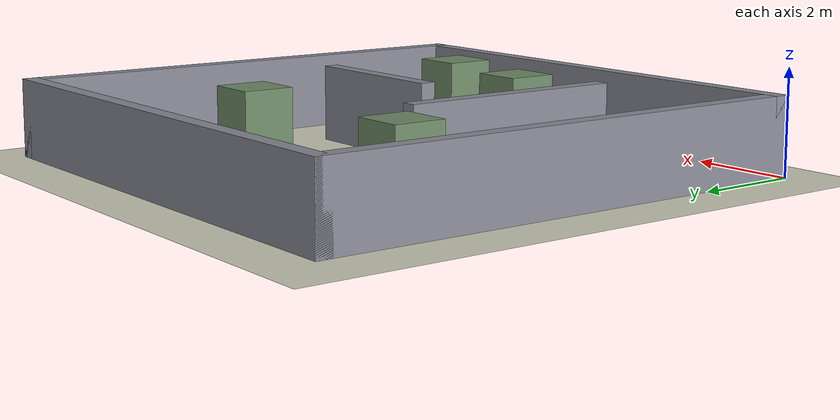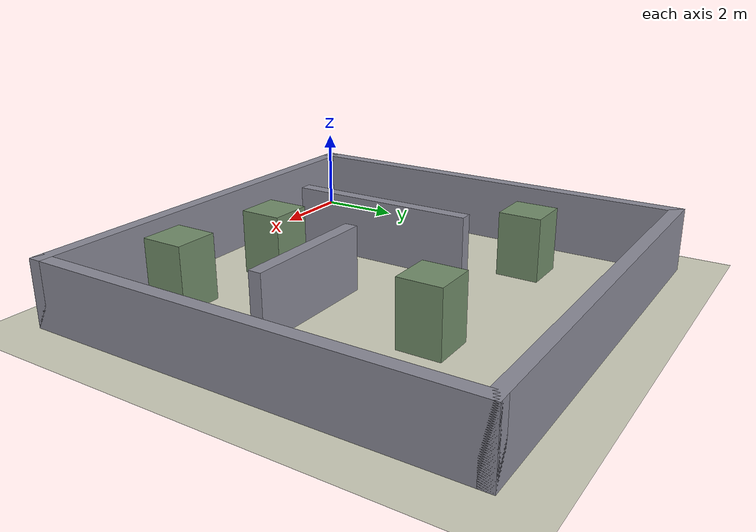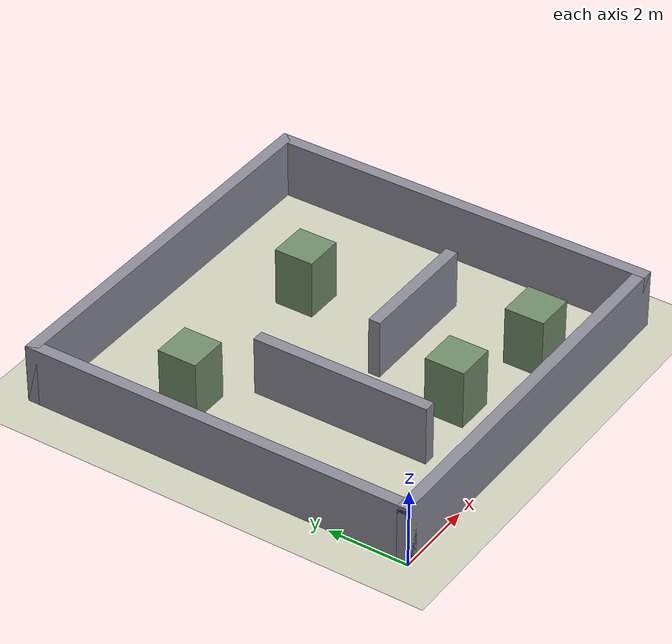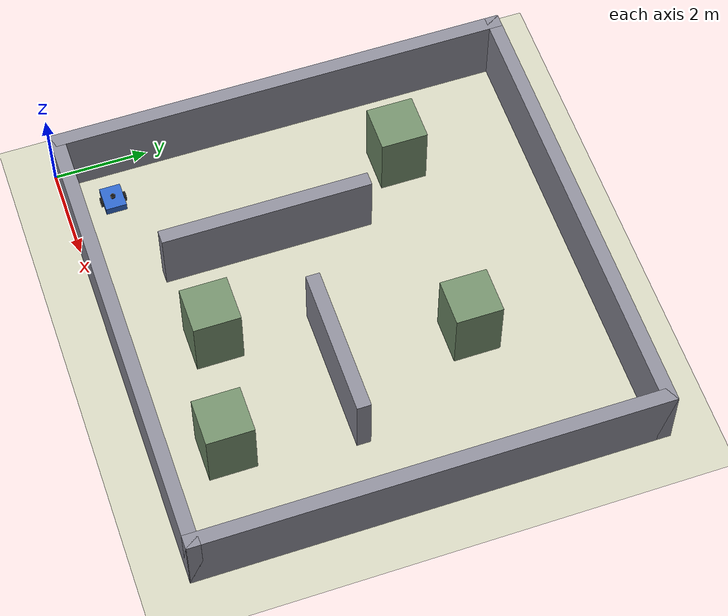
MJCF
<mujoco model="amr_warehouse">

  <compiler angle="radian" autolimits="true"/>
  <option timestep="0.004" gravity="0 0 -9.81" integrator="RK4"/>

  <visual>
    <headlight diffuse="0.85 0.85 0.85" ambient="0.3 0.3 0.3" specular="0.1 0.1 0.1"/>
    <rgba haze="0.15 0.22 0.28 1"/>
  </visual>

  <asset>
    <texture name="skybox" type="skybox" builtin="gradient"
             rgb1="0.18 0.26 0.36" rgb2="0.90 0.94 1.0" width="512" height="3072"/>
    <material name="floor_mat"   rgba="0.82 0.82 0.74 1" shininess="0.05"/>
    <material name="wall_mat"    rgba="0.55 0.55 0.60 1"/>
    <material name="box_mat"     rgba="0.45 0.56 0.42 1"/>
    <material name="chassis_mat" rgba="0.18 0.40 0.78 1"/>
    <material name="wheel_mat"   rgba="0.10 0.10 0.10 1"/>
    <material name="caster_mat"  rgba="0.55 0.55 0.55 1"/>
    <material name="lidar_mat"   rgba="0.05 0.05 0.05 1"/>
  </asset>

  <default>
    <joint damping="0.3" armature="0.01"/>
    <!-- Obstacle walls -->
    <default class="wall">
      <geom type="box" group="0" contype="1" conaffinity="1"
            material="wall_mat" friction="0.8 0.02 0.01"/>
    </default>
    <!-- Robot drive wheels -->
    <default class="wheel">
      <geom type="cylinder" group="1" contype="1" conaffinity="1"
            material="wheel_mat" friction="1.2 0.015 0.005" density="500"/>
    </default>
  </default>

  <!-- ═══════════════════════ WORLD ═══════════════════════ -->
  <worldbody>
    <light name="sun" pos="5 5 8" dir="-0.2 0.2 -1" directional="true"
           diffuse="0.9 0.9 0.9" specular="0.2 0.2 0.2" castshadow="true"/>

    <!-- Floor  (10 m × 10 m, centred at 5, 5) -->
    <geom name="floor" type="plane" pos="5 5 0" size="6 6 0.05"
          material="floor_mat" group="0" contype="1" conaffinity="1"
          friction="0.8 0.02 0.01"/>

    <!-- ── Boundary walls ────────────────────────────────────
         Each box: pos = centre, size = half-extents.
         Wall height = 1.5 m → half-height = 0.75 m           -->

    <!-- South (y=0..0.3) -->
    <geom name="wall_S" class="wall" pos="5.0 0.15 0.75" size="5.0 0.15 0.75"/>
    <!-- North (y=9.7..10.0) -->
    <geom name="wall_N" class="wall" pos="5.0 9.85 0.75" size="5.0 0.15 0.75"/>
    <!-- West  (x=0..0.3) -->
    <geom name="wall_W" class="wall" pos="0.15 5.0 0.75" size="0.15 5.0 0.75"/>
    <!-- East  (x=9.7..10.0) -->
    <geom name="wall_E" class="wall" pos="9.85 5.0 0.75" size="0.15 5.0 0.75"/>

    <!-- Interior wall A  (x=3.0..3.3, y=1.5..6.0) -->
    <geom name="wall_A" class="wall" pos="3.15 3.75 0.75" size="0.15 2.25 0.75"/>
    <!-- Interior wall B  (x=5.0..8.2, y=4.0..4.3) -->
    <geom name="wall_B" class="wall" pos="6.60 4.15 0.75" size="1.60 0.15 0.75"/>

    <!-- Box 1  (x=1.5..2.5, y=6.5..7.5) -->
    <geom name="box_1" type="box" pos="2.0 7.0 0.75" size="0.5 0.5 0.75"
          group="0" contype="1" conaffinity="1" material="box_mat"/>
    <!-- Box 2  (x=7.0..8.0, y=1.0..2.0) -->
    <geom name="box_2" type="box" pos="7.5 1.5 0.75" size="0.5 0.5 0.75"
          group="0" contype="1" conaffinity="1" material="box_mat"/>
    <!-- Box 3  (x=6.0..7.0, y=6.5..7.5) -->
    <geom name="box_3" type="box" pos="6.5 7.0 0.75" size="0.5 0.5 0.75"
          group="0" contype="1" conaffinity="1" material="box_mat"/>
    <!-- Box 4  (x=4.5..5.5, y=1.5..2.5) -->
    <geom name="box_4" type="box" pos="5.0 2.0 0.75" size="0.5 0.5 0.75"
          group="0" contype="1" conaffinity="1" material="box_mat"/>

    <body name="amr_base" pos="1.0 1.0 0.10">
      <freejoint name="root"/>

      <!-- Chassis  0.55 × 0.45 × 0.18 m -->
      <geom name="chassis" type="box" size="0.275 0.225 0.09"
            group="1" contype="1" conaffinity="1"
            material="chassis_mat" mass="12"/>

      <!-- IMU / base reference site -->
      <site name="imu_site" pos="0 0 0" size="0.015" rgba="1 1 0 0.5"/>

      <!-- LiDAR mount site (rays cast from here) -->
      <site name="lidar_site" pos="0 0 0.115" size="0.01" rgba="1 0 0 0.8"/>

      <!-- LiDAR visual body (non-collidable, excluded from rays via group 2) -->
      <geom name="lidar_vis" type="cylinder" size="0.05 0.025" pos="0 0 0.115"
            group="2" contype="0" conaffinity="0" material="lidar_mat" mass="0.15"/>

      <!-- ── Left drive wheel ──────────────────────────── -->
      <body name="left_wheel" pos="0 0.25 0">
        <joint name="left_wheel_joint" type="hinge" axis="0 1 0"
               limited="false" damping="0.5" armature="0.02"/>
        <!-- cylinder axis along Y via euler 90° around X -->
        <geom name="left_wheel_geom" class="wheel"
              size="0.10 0.025" euler="1.5708 0 0" mass="0.8"/>
      </body>

      <!-- ── Right drive wheel ─────────────────────────── -->
      <body name="right_wheel" pos="0 -0.25 0">
        <joint name="right_wheel_joint" type="hinge" axis="0 1 0"
               limited="false" damping="0.5" armature="0.02"/>
        <geom name="right_wheel_geom" class="wheel"
              size="0.10 0.025" euler="1.5708 0 0" mass="0.8"/>
      </body>

      <!-- ── Rear caster (passive sphere) ─────────────── -->
      <body name="caster" pos="-0.22 0 -0.06">
        <joint name="caster_ball" type="ball" damping="0.05" limited="false"/>
        <geom name="caster_geom" type="sphere" size="0.04"
              group="1" contype="1" conaffinity="1"
              material="caster_mat" mass="0.3"
              friction="0.001 0.001 0.001"/>
      </body>

    </body><!-- /amr_base -->

  </worldbody>

  <!-- ═══════════════════ ACTUATORS ═══════════════════════
       Velocity-controlled wheels: ctrl → target rad/s.
       Wheel radius = 0.10 m → for 1 m/s: ctrl = 10 rad/s. -->
  <actuator>
    <velocity name="left_vel"  joint="left_wheel_joint"  kv="6.0" ctrlrange="-20 20"/>
    <velocity name="right_vel" joint="right_wheel_joint" kv="6.0" ctrlrange="-20 20"/>
  </actuator>

  <!-- ═══════════════════ SENSORS ════════════════════════ -->
  <sensor>
    <!-- Orientation quaternion (w, x, y, z) of base -->
    <framequat  name="imu_quat" objtype="site" objname="imu_site"/>
    <!-- Angular velocity (rad/s) -->
    <gyro       name="imu_gyro" site="imu_site" noise="0.004"/>
    <!-- Linear acceleration (m/s²) -->
    <accelerometer name="imu_acc" site="imu_site" noise="0.008"/>
    <!-- World-frame velocity of base site -->
    <framelinvel name="base_linvel" objtype="site" objname="imu_site"/>
    <frameangvel name="base_angvel" objtype="site" objname="imu_site"/>
  </sensor>

</mujoco>
